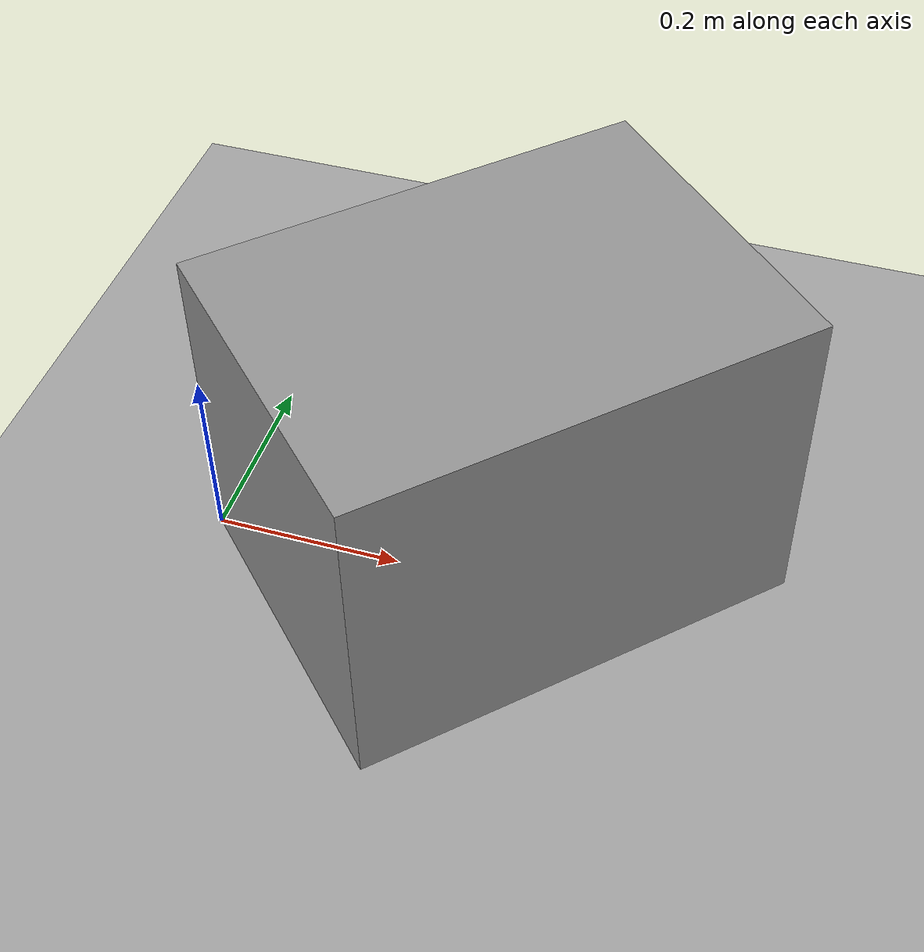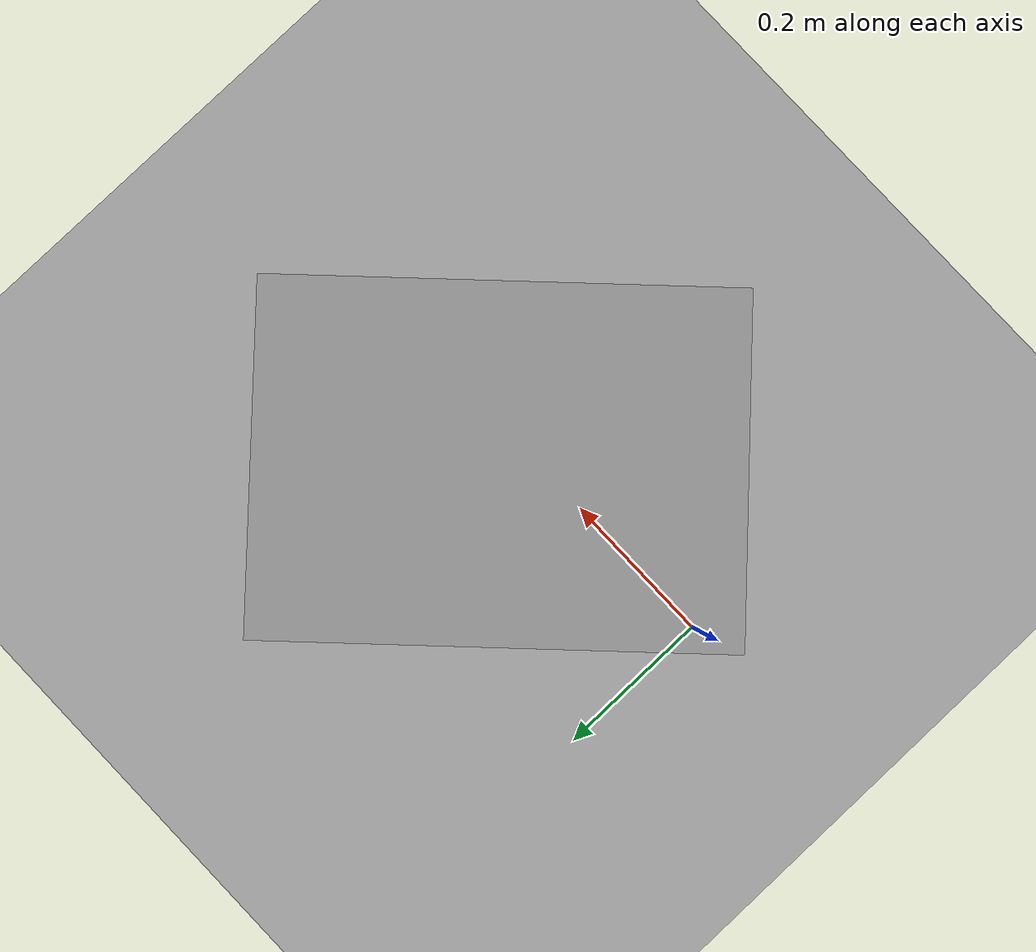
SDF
<sdf version="1.7">
  <world name="default">
    <plugin filename="gz-sim-physics-system" name="gz::sim::systems::Physics" />
    <plugin filename="gz-sim-user-commands-system" name="gz::sim::systems::UserCommands" />
    <plugin filename="gz-sim-scene-broadcaster-system" name="gz::sim::systems::SceneBroadcaster" />
    <plugin filename="gz-sim-sensors-system" name="gz::sim::systems::Sensors">
      <render_engine>ogre2</render_engine>
    </plugin>
    <plugin filename="gz-sim-imu-system" name="gz::sim::systems::Imu" />
    <plugin filename="gz-sim-contact-system" name="gz::sim::systems::Contact" />
    <light name="sun" type="directional">
      <cast_shadows>true</cast_shadows>
      <direction>-0.5 -0.5 -1</direction>
      <diffuse>1 1 1 1</diffuse>
      <specular>0.1 0.1 0.1 1</specular>
      <intensity>1.0</intensity>
    </light>
    <physics type="ode">
      <max_step_size>0.001</max_step_size>
      <real_time_factor>1.0</real_time_factor>
      <ode>
        <solver>
          <type>quick</type>
          <iters>150</iters>
          <precon_iters>0</precon_iters>
          <sor>1.4</sor>
          <use_dynamic_moi_rescaling>1</use_dynamic_moi_rescaling>
        </solver>
        <constraints>
          <cfm>0.00001</cfm>
          <erp>0.2</erp>
          <contact_max_correcting_vel>2000.0</contact_max_correcting_vel>
          <contact_surface_layer>0.01</contact_surface_layer>
        </constraints>
      </ode>
    </physics>
    <model name="calibration_target">
      <static>true</static>
      <link name="link">
        <pose>0.29634845199528204 0.044901280605345734 0.1778 0.0 0.0 2.356194490192345</pose>
        <visual name="visual">
          <material>
            <ambient>0.5861031999252952 0.5861031999252952 0.5861031999252952 1</ambient>
            <diffuse>0.5861031999252952 0.5861031999252952 0.5861031999252952 1</diffuse>
          </material>
          <geometry>
            <box>
              <size>0.3556 0.4826 0.3556</size>
            </box>
          </geometry>
        </visual>
        <collision name="collision">
          <geometry>
            <box>
              <size>0.3556 0.4826 0.3556</size>
            </box>
          </geometry>
          <surface>
            <friction>
              <ode>
                <mu>100</mu>
                <mu2>50.0</mu2>
                <slip1>0.0</slip1>
                <slip2>0.0</slip2>
              </ode>
            </friction>
            <bounce />
            <contact>
              <ode>
                <kp>10000.0</kp>
                <kd>100.0</kd>
              </ode>
            </contact>
          </surface>
        </collision>
      </link>
    </model>
    <model name="ground_plane">
      <static>true</static>
      <link name="link">
        <pose>0.0 0.0 -0.0005 0.0 0.0 0.0</pose>
        <visual name="visual">
          <material>
            <ambient>0.6434092550556346 0.6434092550556346 0.6434092550556346 1</ambient>
            <diffuse>0.6434092550556346 0.6434092550556346 0.6434092550556346 1</diffuse>
          </material>
          <geometry>
            <box>
              <size>3 3 0.001</size>
            </box>
          </geometry>
        </visual>
        <collision name="collision">
          <geometry>
            <box>
              <size>3 3 0.001</size>
            </box>
          </geometry>
          <surface>
            <friction>
              <ode>
                <mu>100</mu>
                <mu2>50.0</mu2>
                <slip1>0.0</slip1>
                <slip2>0.0</slip2>
              </ode>
            </friction>
            <bounce />
            <contact>
              <ode>
                <kp>10000.0</kp>
                <kd>100.0</kd>
              </ode>
            </contact>
          </surface>
        </collision>
      </link>
    </model>
  </world>
</sdf>
